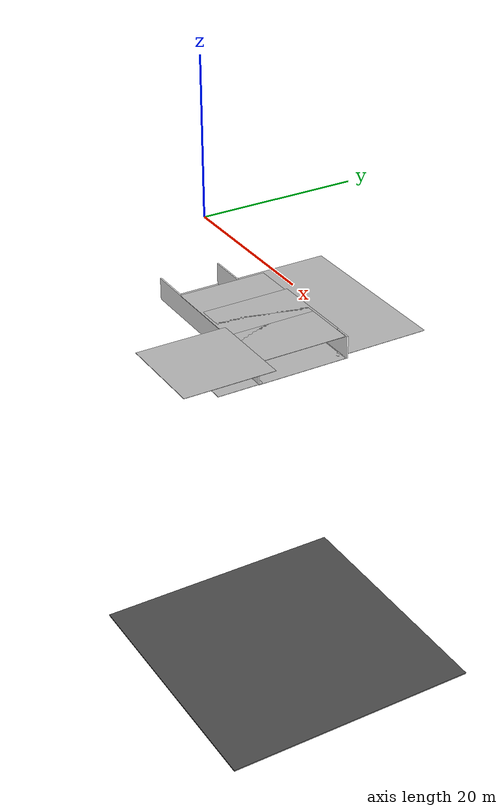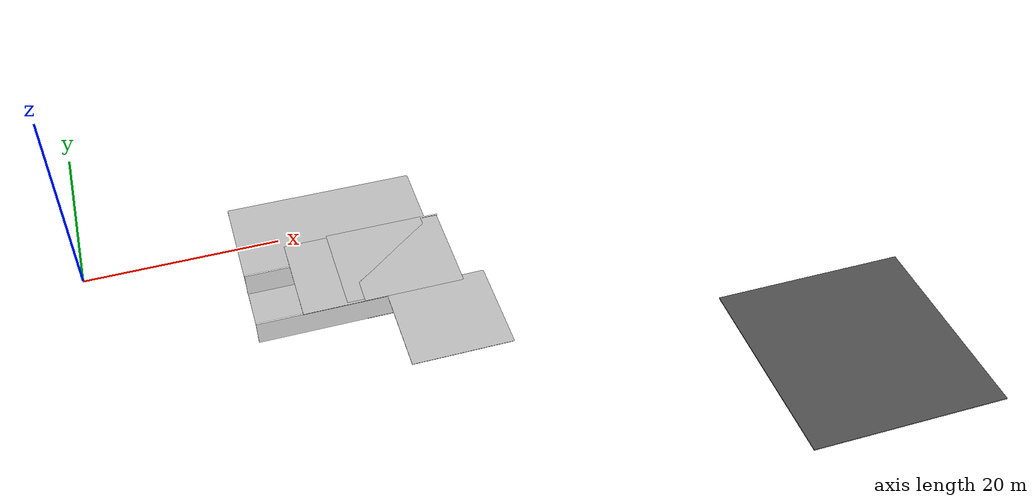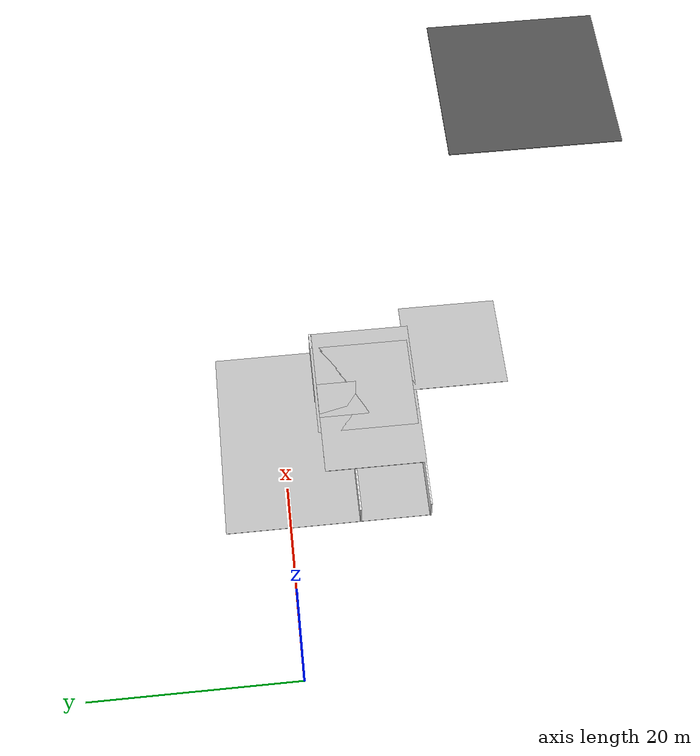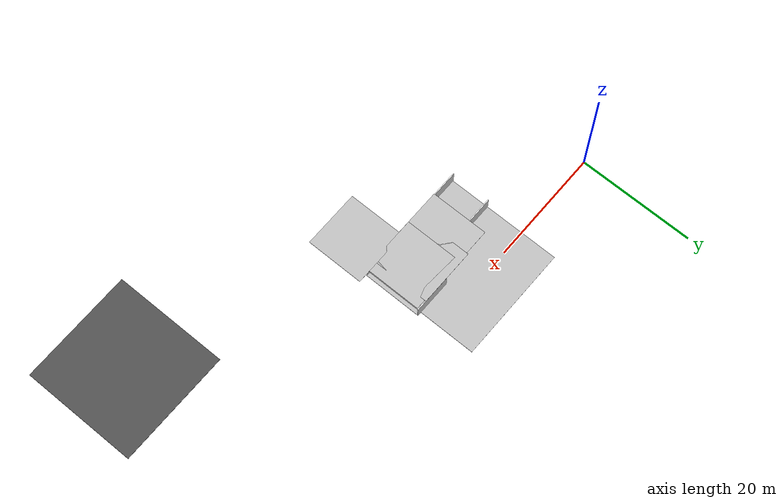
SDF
<sdf version="1.6">
 <world name="default">
  <model name="mainoffice">
   <pose>42.7555 15.4488 0 0 -0 0</pose>
   <link name="Wall_34">
    <collision name="Wall_34_Collision">
     <geometry><box><size>15.75 0.15 2.5</size></box></geometry>
     <pose>0 0 1.25 0 -0 0</pose>
    </collision>
    <visual name="Wall_34_Visual">
     <pose>0 0 1.25 0 -0 0</pose>
     <geometry><box><size>15.75 0.15 2.5</size></box></geometry>
     <material>
      <script>
       <uri>model://office_env/materials/scripts</uri>
       <uri>model://office_env/materials/textures</uri>
       <name>wall</name>
      </script>
      <ambient>1 1 1 1</ambient>
     </material>
    </visual>
    <pose>-19.2991 -29.125 0 0 -0 3.14159</pose>
   </link>
   <link name="Wall_56">
    <pose>-9.07409 -29.125 0 0 -0 0</pose>
    <visual name="Wall_56_Visual_0">
     <pose>-1.53426 0 1.25 0 -0 0</pose>
     <geometry><box><size>1.93148 0.15 2.5</size></box></geometry>
     <material>
      <script>
       <uri>model://office_env/materials/scripts</uri>
       <uri>model://office_env/materials/textures</uri>
       <name>wall</name>
      </script>
      <ambient>1 1 1 1</ambient>
     </material>
    </visual>
    <collision name="Wall_56_Collision_0">
     <geometry><box><size>1.93148 0.15 2.5</size></box></geometry>
     <pose>-1.53426 0 1.25 0 -0 0</pose>
    </collision>
    <visual name="Wall_56_Visual_1">
     <pose>1.71574 0 1.25 0 -0 0</pose>
     <geometry><box><size>1.56852 0.15 2.5</size></box></geometry>
     <material>
      <script>
       <uri>model://office_env/materials/scripts</uri>
       <uri>model://office_env/materials/textures</uri>
       <name>wall</name>
      </script>
      <ambient>1 1 1 1</ambient>
     </material>
    </visual>
    <collision name="Wall_56_Collision_1">
     <geometry><box><size>1.56852 0.15 2.5</size></box></geometry>
     <pose>1.71574 0 1.25 0 -0 0</pose>
    </collision>
    <visual name="Wall_56_Visual_2">
     <pose>0.181485 0 2.25 0 -0 0</pose>
     <geometry><box><size>1.5 0.15 0.5</size></box></geometry>
     <material>
      <script>
       <uri>model://office_env/materials/scripts</uri>
       <uri>model://office_env/materials/textures</uri>
       <name>wall</name>
      </script>
      <ambient>1 1 1 1</ambient>
     </material>
    </visual>
    <collision name="Wall_56_Collision_2">
     <geometry><box><size>1.5 0.15 0.5</size></box></geometry>
     <pose>0.181485 0 2.25 0 -0 0</pose>
    </collision>
   </link>
   <link name="Wall_59">
    <collision name="Wall_59_Collision">
     <geometry><box><size>7 0.15 2.5</size></box></geometry>
     <pose>0 0 1.25 0 -0 0</pose>
    </collision>
    <visual name="Wall_59_Visual">
     <pose>0 0 1.25 0 -0 0</pose>
     <geometry><box><size>7 0.15 2.5</size></box></geometry>
     <material>
      <script>
       <uri>model://office_env/materials/scripts</uri>
       <uri>model://office_env/materials/textures</uri>
       <name>wall</name>
      </script>
      <ambient>1 1 1 1</ambient>
     </material>
    </visual>
    <pose>-11.4991 -25.7 0 0 -0 1.5708</pose>
   </link>
   <link name="Wall_60">
    <pose>-13.7991 -22.275 0 0 -0 3.14159</pose>
    <visual name="Wall_60_Visual_0">
     <pose>-1.46064 0 1.25 0 -0 0</pose>
     <geometry><box><size>1.82871 0.15 2.5</size></box></geometry>
     <material>
      <script>
       <uri>model://office_env/materials/scripts</uri>
       <uri>model://office_env/materials/textures</uri>
       <name>wall</name>
      </script>
      <ambient>1 1 1 1</ambient>
     </material>
    </visual>
    <collision name="Wall_60_Collision_0">
     <geometry><box><size>1.82871 0.15 2.5</size></box></geometry>
     <pose>-1.46064 0 1.25 0 -0 0</pose>
    </collision>
    <visual name="Wall_60_Visual_1">
     <pose>1.66436 0 1.25 0 -0 0</pose>
     <geometry><box><size>1.42129 0.15 2.5</size></box></geometry>
     <material>
      <script>
       <uri>model://office_env/materials/scripts</uri>
       <uri>model://office_env/materials/textures</uri>
       <name>wall</name>
      </script>
      <ambient>1 1 1 1</ambient>
     </material>
    </visual>
    <collision name="Wall_60_Collision_1">
     <geometry><box><size>1.42129 0.15 2.5</size></box></geometry>
     <pose>1.66436 0 1.25 0 -0 0</pose>
    </collision>
    <visual name="Wall_60_Visual_2">
     <pose>0.203711 0 2.25 0 -0 0</pose>
     <geometry><box><size>1.5 0.15 0.5</size></box></geometry>
     <material>
      <script>
       <uri>model://office_env/materials/scripts</uri>
       <uri>model://office_env/materials/textures</uri>
       <name>wall</name>
      </script>
      <ambient>1 1 1 1</ambient>
     </material>
    </visual>
    <collision name="Wall_60_Collision_2">
     <geometry><box><size>1.5 0.15 0.5</size></box></geometry>
     <pose>0.203711 0 2.25 0 -0 0</pose>
    </collision>
   </link>
   <link name="Wall_61">
    <collision name="Wall_61_Collision">
     <geometry><box><size>0.5 0.15 2.5</size></box></geometry>
     <pose>0 0 1.25 0 -0 0</pose>
    </collision>
    <visual name="Wall_61_Visual">
     <pose>0 0 1.25 0 -0 0</pose>
     <geometry><box><size>0.5 0.15 2.5</size></box></geometry>
     <material>
      <script>
       <uri>model://office_env/materials/scripts</uri>
       <uri>model://office_env/materials/textures</uri>
       <name>wall</name>
      </script>
      <ambient>1 1 1 1</ambient>
     </material>
    </visual>
    <pose>-16.2741 -22.275 0 0 -0 3.14159</pose>
   </link>
   <link name="Wall_65">
    <collision name="Wall_65_Collision">
     <geometry><box><size>10.75 0.15 2.5</size></box></geometry>
     <pose>0 0 1.25 0 -0 0</pose>
    </collision>
    <visual name="Wall_65_Visual">
     <pose>0 0 1.25 0 -0 0</pose>
     <geometry><box><size>10.75 0.15 2.5</size></box></geometry>
     <material>
      <script>
       <uri>model://office_env/materials/scripts</uri>
       <uri>model://office_env/materials/textures</uri>
       <name>wall</name>
      </script>
      <ambient>1 1 1 1</ambient>
     </material>
    </visual>
    <pose>-21.7491 -22.275 0 0 -0 3.14159</pose>
   </link>
   <link name="Wall_81">
    <collision name="Wall_81_Collision">
     <geometry><box><size>6.75 0.15 2.5</size></box></geometry>
     <pose>0 0 1.25 0 -0 0</pose>
    </collision>
    <visual name="Wall_81_Visual">
     <pose>0 0 1.25 0 -0 0</pose>
     <geometry><box><size>6.75 0.15 2.5</size></box></geometry>
     <material>
      <script>
       <uri>model://office_env/materials/scripts</uri>
       <uri>model://office_env/materials/textures</uri>
       <name>wall</name>
      </script>
      <ambient>1 1 1 1</ambient>
     </material>
    </visual>
    <pose>-9.72161 -19.0475 0 0 -0 3.14159</pose>
   </link>
   <static>1</static>
  </model>
  <model name="asphalt_plane">
   <static>1</static>
   <link name="link">
    <collision name="collision"><geometry><box><size>20 20 0.1</size></box></geometry></collision>
    <visual name="visual">
     <cast_shadows>0</cast_shadows>
     <geometry><box><size>20 20 0.1</size></box></geometry>
     <material>
      <script>
       <uri>model://asphalt_plane/materials/scripts</uri>
       <uri>model://asphalt_plane/materials/textures</uri>
       <name>vrc/asphalt</name>
      </script>
     </material>
    </visual>
   </link>
   <pose>70.7475 -31.5972 0 0 -0 0</pose>
  </model>
  <model name="Floor_37">
   <link name="main">
    <pose>0 0 0.01 0 -0 0</pose>
    <collision name="main_Collision"><geometry><box><size>5 5 0.05</size></box></geometry></collision>
    <visual name="main_Visual">
     <geometry><box><size>5 5 0.05</size></box></geometry>
     <material>
      <script>
       <uri>model://Floor_verysmall/materials/scripts</uri>
       <uri>model://Floor_verysmall/materials/textures</uri>
       <name>floor</name>
      </script>
     </material>
    </visual>
   </link>
   <static>1</static>
   <pose>33.7875 -15.7631 0 0 -0 0</pose>
  </model>
  <model name="Floor_38">
   <link name="main">
    <pose>0 0 0.01 0 -0 0</pose>
    <collision name="main_Collision"><geometry><box><size>20 20 0.05</size></box></geometry></collision>
    <visual name="main_Visual">
     <geometry><box><size>20 20 0.05</size></box></geometry>
     <material>
      <script>
       <uri>model://Floor_medium/materials/scripts</uri>
       <uri>model://Floor_medium/materials/textures</uri>
       <name>floor</name>
      </script>
     </material>
    </visual>
   </link>
   <static>1</static>
   <pose>25.6683 -3.68274 0 0 -0 0</pose>
  </model>
  <model name="Floor_39">
   <link name="main">
    <pose>0 0 0.01 0 -0 0</pose>
    <collision name="main_Collision"><geometry><box><size>10 10 0.05</size></box></geometry></collision>
    <visual name="main_Visual">
     <geometry><box><size>10 10 0.05</size></box></geometry>
     <material>
      <script>
       <uri>model://Floor_small/materials/scripts</uri>
       <uri>model://Floor_small/materials/textures</uri>
       <name>floor</name>
      </script>
     </material>
    </visual>
   </link>
   <static>1</static>
   <pose>31.3575 -8.76884 0 0 -0 0</pose>
  </model>
  <model name="Floor_3_clone_10_clone_8">
   <link name="main">
    <pose>0 0 0.01 0 -0 0</pose>
    <collision name="main_Collision"><geometry><box><size>10 10 0.05</size></box></geometry></collision>
    <visual name="main_Visual">
     <geometry><box><size>10 10 0.05</size></box></geometry>
     <material>
      <script>
       <uri>model://Floor_small/materials/scripts</uri>
       <uri>model://Floor_small/materials/textures</uri>
       <name>floor</name>
      </script>
     </material>
    </visual>
   </link>
   <static>1</static>
   <pose>29.5975 -8.51645 2.5 0 -0 0</pose>
  </model>
  <model name="Floor_3_clone_16">
   <link name="main">
    <pose>0 0 0.01 0 -0 0</pose>
    <collision name="main_Collision"><geometry><box><size>10 10 0.05</size></box></geometry></collision>
    <visual name="main_Visual">
     <geometry><box><size>10 10 0.05</size></box></geometry>
     <material>
      <script>
       <uri>model://Floor_small/materials/scripts</uri>
       <uri>model://Floor_small/materials/textures</uri>
       <name>floor</name>
      </script>
     </material>
    </visual>
   </link>
   <static>1</static>
   <pose>31.3111 -8.77748 2.5 0 -0 0</pose>
  </model>
  <model name="Floor_3_clone_17">
   <link name="main">
    <pose>0 0 0.01 0 -0 0</pose>
    <collision name="main_Collision"><geometry><box><size>10 10 0.05</size></box></geometry></collision>
    <visual name="main_Visual">
     <geometry><box><size>10 10 0.05</size></box></geometry>
     <material>
      <script>
       <uri>model://Floor_small/materials/scripts</uri>
       <uri>model://Floor_small/materials/textures</uri>
       <name>floor</name>
      </script>
     </material>
    </visual>
   </link>
   <static>1</static>
   <pose>25.182 -8.79488 2.5 0 -0 0</pose>
  </model>
  <model name="Floor_3_clone_21">
   <link name="main">
    <pose>0 0 0.01 0 -0 0</pose>
    <collision name="main_Collision"><geometry><box><size>10 10 0.05</size></box></geometry></collision>
    <visual name="main_Visual">
     <geometry><box><size>10 10 0.05</size></box></geometry>
     <material>
      <script>
       <uri>model://Floor_small/materials/scripts</uri>
       <uri>model://Floor_small/materials/textures</uri>
       <name>floor</name>
      </script>
     </material>
    </visual>
   </link>
   <static>1</static>
   <pose>33.5525 -18.1126 2.5 0 -0 0</pose>
  </model>
 </world>
</sdf>
